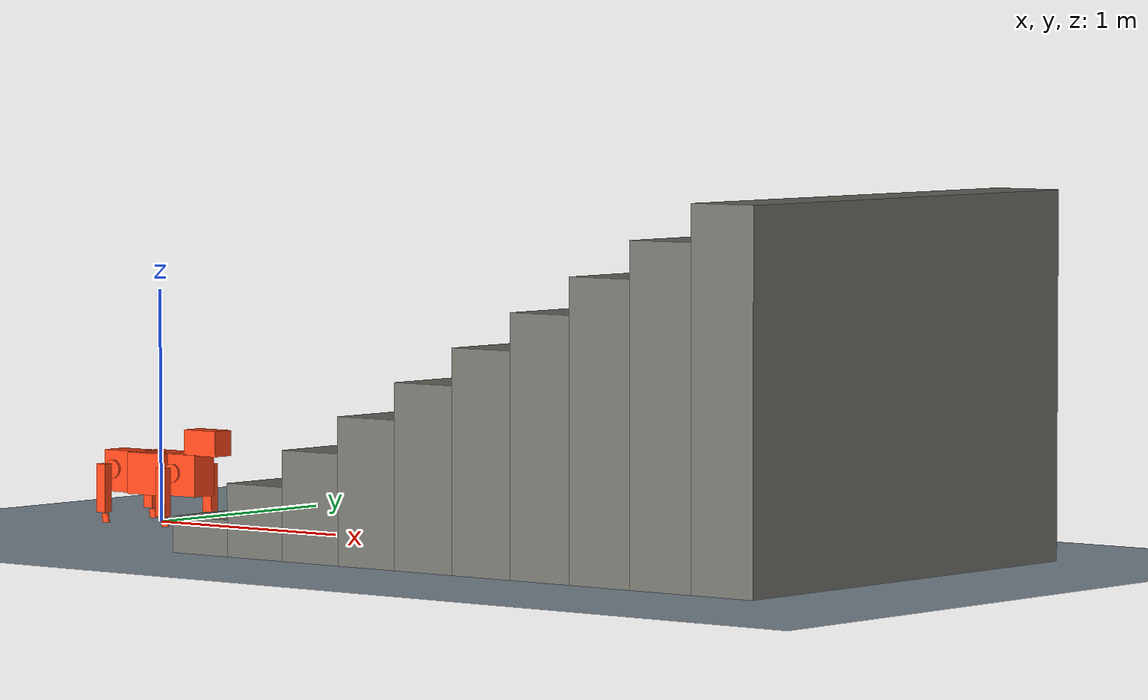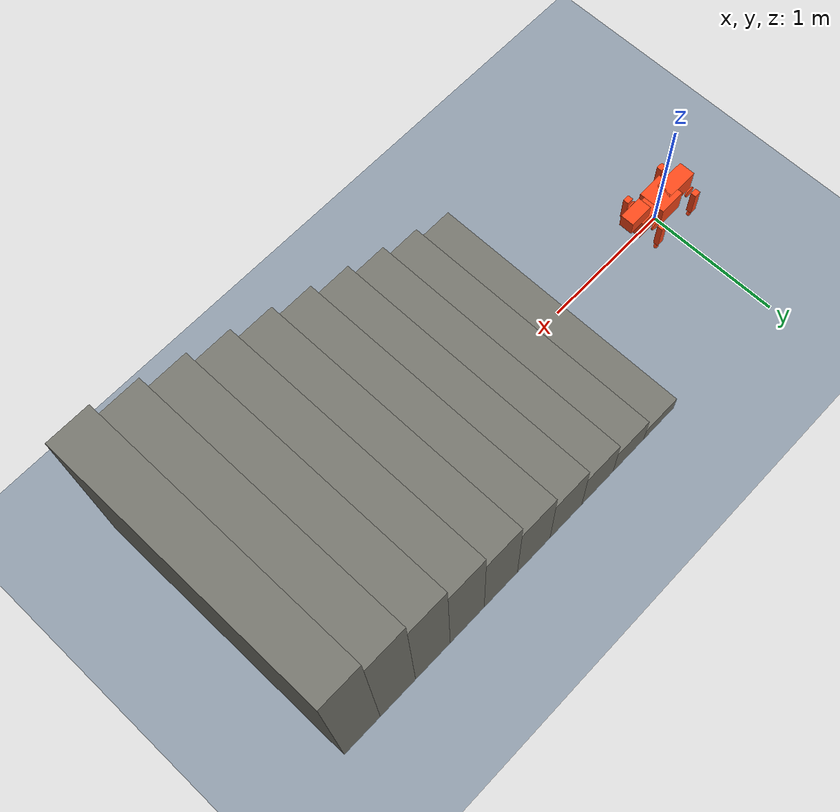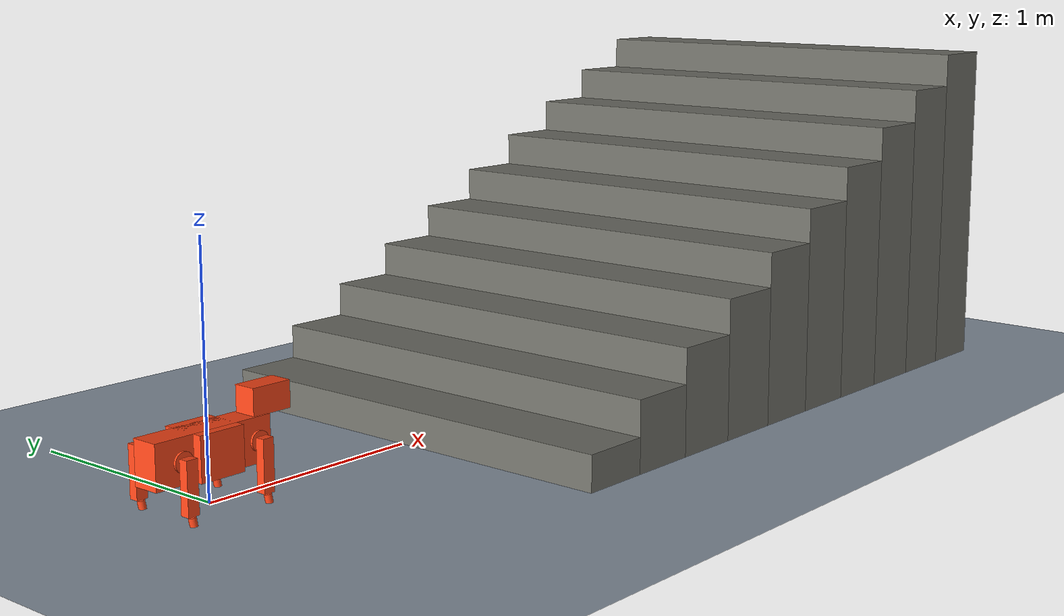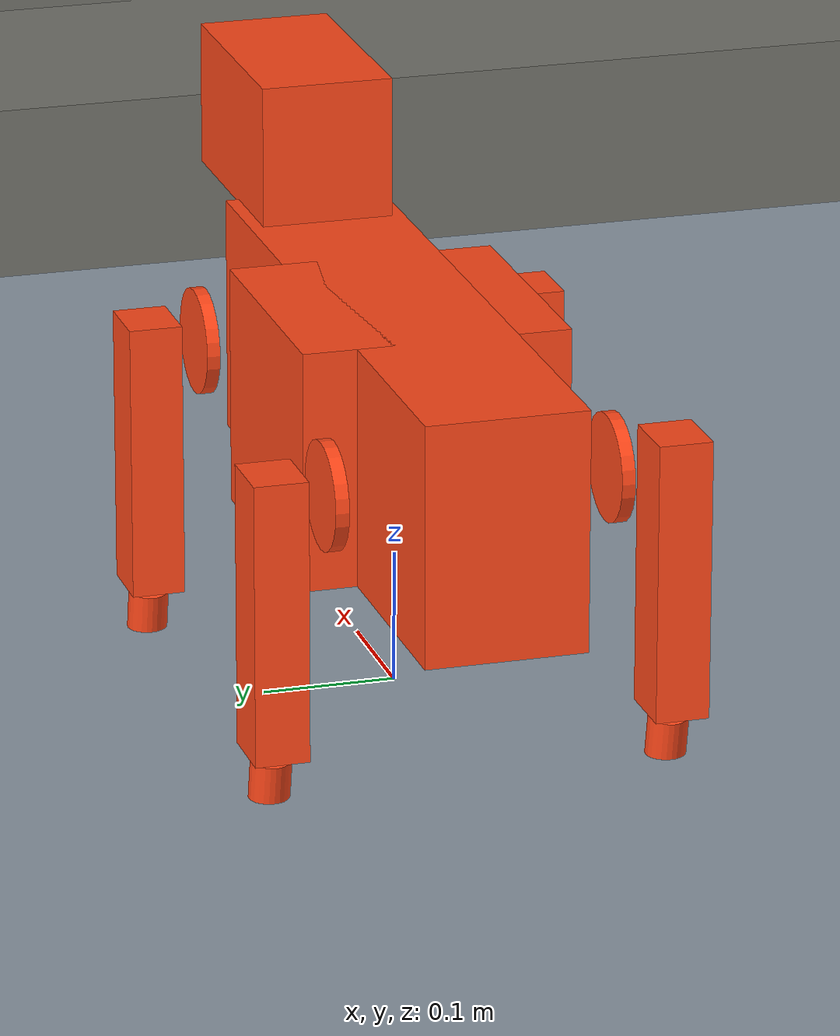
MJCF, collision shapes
<mujoco model="Argos_2_0114">
  <!-- 阅读顺序建议：default(参数模板) -> asset(资源) -> worldbody(刚体树) -> actuator(控制输入) -> contact(碰撞过滤) -> sensor(状态观测) -->
  <!-- default：定义可复用参数模板，后续 body/joint/geom 通过 class 继承 -->
  <default>
    <default class="robot">
      <!-- motor 模板：给关节与执行器提供统一默认属性 -->
      <default class="motor">
        <joint armature="0.01" />
        <motor />
      </default>
      <!-- visual 模板：可视化网格，默认不参与碰撞 -->
      <default class="visual">
        <geom material="visual_material" contype="0" conaffinity="0" group="2" />
      </default>
      <!-- collision 模板：碰撞几何的接触参数与摩擦参数 -->
      <default class="collision">
        <geom material="collision_material" condim="3" contype="0" conaffinity="1" priority="1" group="1" solref="0.005 1" solimp="0.99 0.999 1e-05" friction="1 0.01 0.01" />
      </default>
    </default>
  </default>
  <!-- compiler：MuJoCo 解析选项（角度单位、关节限制自动推断） -->
  <compiler angle="radian" />
  <compiler autolimits="true"/>
  <!-- asset：材质、纹理、网格资源库（仅定义资源，不直接产生物理行为） -->
  <asset>
    <!-- 修复1：给空名称材质赋予合法名称 visual_material，保留原 rgba -->
    <material name="visual_material" rgba="0.75294 0.75294 0.75294 1" />
    <material name="default_material" rgba="0.7 0.7 0.7 1" />
    <material name="collision_material" rgba="1.0 0.28 0.1 0.0" />
    <material name="stair_mat" rgba="0.45 0.45 0.42 1" />
    <!-- 修复2：补充 floor 引用的 checker_mat 材质定义 -->
    <texture type="2d" name="checker_tex" builtin="checker" rgb1="0.2 0.3 0.4" rgb2="0.9 0.9 0.9" width="500" height="500"/>
    <material name="checker_mat" texture="checker_tex" specular="1" shininess="1" texrepeat="15 15"/>
    <!-- 模型文件引用 -->
    <mesh name="FL_HIP.STL" file="meshes/FL_HIP.STL" />
    <mesh name="FL_THIGH.STL" file="meshes/FL_THIGH.STL" />
    <mesh name="FL_SHANK.STL" file="meshes/FL_SHANK.STL" />
    <mesh name="FL_FOOT.STL" file="meshes/FL_FOOT.STL" />
    <mesh name="FR_HIP.STL" file="meshes/FR_HIP.STL" />
    <mesh name="FR_THIGH.STL" file="meshes/FR_THIGH.STL" />
    <mesh name="FR_SHANK.STL" file="meshes/FR_SHANK.STL" />
    <mesh name="FR_FOOT.STL" file="meshes/FR_FOOT.STL" />
    <mesh name="HL_HIP.STL" file="meshes/HL_HIP.STL" />
    <mesh name="HL_THIGH.STL" file="meshes/HL_THIGH.STL" />
    <mesh name="HL_SHANK.STL" file="meshes/HL_SHANK.STL" />
    <mesh name="HL_FOOT.STL" file="meshes/HL_FOOT.STL" />
    <mesh name="HR_HIP.STL" file="meshes/HR_HIP.STL" />
    <mesh name="HR_THIGH.STL" file="meshes/HR_THIGH.STL" />
    <mesh name="HR_SHANK.STL" file="meshes/HR_SHANK.STL" />
    <mesh name="HR_FOOT.STL" file="meshes/HR_FOOT.STL" />
    <mesh name="HEAD.STL" file="meshes/HEAD.STL" />
  </asset>
  <!-- worldbody：场景与机器人刚体树，所有可参与仿真的 body/geom 都定义在此 -->
  <worldbody>
    <!-- 环境元素：地面和光源 -->
    <geom name="floor" type="plane" size="10 10 0.1" pos="0 0 0" material="checker_mat"/>
    <light directional="true" pos="-0.5 0.5 3" dir="0 0 -1"/>
    <!-- 10-step staircase in the robot forward direction (+X): rise 0.15m, tread 0.30m. -->
    <geom name="stair_01" type="box" size="0.15 1.0 0.075" pos="1.15 0 0.075" material="stair_mat" friction="1 0.01 0.01"/>
    <geom name="stair_02" type="box" size="0.15 1.0 0.150" pos="1.45 0 0.150" material="stair_mat" friction="1 0.01 0.01"/>
    <geom name="stair_03" type="box" size="0.15 1.0 0.225" pos="1.75 0 0.225" material="stair_mat" friction="1 0.01 0.01"/>
    <geom name="stair_04" type="box" size="0.15 1.0 0.300" pos="2.05 0 0.300" material="stair_mat" friction="1 0.01 0.01"/>
    <geom name="stair_05" type="box" size="0.15 1.0 0.375" pos="2.35 0 0.375" material="stair_mat" friction="1 0.01 0.01"/>
    <geom name="stair_06" type="box" size="0.15 1.0 0.450" pos="2.65 0 0.450" material="stair_mat" friction="1 0.01 0.01"/>
    <geom name="stair_07" type="box" size="0.15 1.0 0.525" pos="2.95 0 0.525" material="stair_mat" friction="1 0.01 0.01"/>
    <geom name="stair_08" type="box" size="0.15 1.0 0.600" pos="3.25 0 0.600" material="stair_mat" friction="1 0.01 0.01"/>
    <geom name="stair_09" type="box" size="0.15 1.0 0.675" pos="3.55 0 0.675" material="stair_mat" friction="1 0.01 0.01"/>
    <geom name="stair_10" type="box" size="0.15 1.0 0.750" pos="3.85 0 0.750" material="stair_mat" friction="1 0.01 0.01"/>
    <!-- base：机器人根节点（自由基座），四条腿从此处分支 -->
    <body name="base" pos="0.00000000 0.00000000 0.2" quat="1 0 0 0" childclass="robot">
      <freejoint name="floating_base" />
      <site name="imu_site" pos="0 0 0" size="0.005" rgba="1 0 0 1"/>
      <inertial pos="0 0 0" mass="6.240" diaginertia="0.02922043 0.12807702 0.12894751"/>
      <geom name="base_collision_0" pos="-0.015 0 0.01" quat="1.0 0.0 0.0 0.0" type="box" size="0.265 0.06 0.09" class="collision" />
      <geom name="base_collision_1" pos="-0.01 0 0.01" quat="1.0 0.0 0.0 0.0" type="box" size="0.1 0.1 0.09" class="collision" />
      <!-- 前左腿（FL）链路：HIP -> THIGH -> SHANK -> FOOT；其余三条腿使用相同层级结构 -->
      <body name="FL_HIP" pos="0.15893 0.054773 0.0227" quat="1.0 0.0 0.0 0.0">
        <joint name="FL_HipX_joint" type="hinge" ref="0.0" class="motor" range="-0.4886 0.4886" axis="1 0 0" />
        <site name="FL_HipX_joint_site" pos="0 0 0" quat="1 0 0 0" />
        <inertial pos="-0.00858663 -0.00606626 0.00210488" quat="1.0 0.0 0.0 0.0" mass="0.544" diaginertia="0.00035868 0.00044821 0.00039697" />
        <geom name="FL_HIP_collision" pos="0 0.05 0" quat="0.7071067835889063 0.7071067787841887 0.0 0.0" type="cylinder" size="0.04 0.005" class="collision" />
        <geom name="FL_HIP_visual" pos="0 0 0" quat="1.0 0.0 0.0 0.0" material="visual_material" type="mesh" mesh="FL_HIP.STL" class="visual" />
        <body name="FL_THIGH" pos="0 0.093356 0" quat="1.0 0.0 0.0 0.0">
          <joint name="FL_HipY_joint" type="hinge" ref="0.0" class="motor" range="-0.3525 2.789" axis="0 1 0" />
          <site name="FL_HipY_joint_site" pos="0 0 0" quat="1 0 0 0" />
          <inertial pos="-0.00437132 -0.03103389 -0.03485887" quat="1.0 0.0 0.0 0.0" mass="1.181" diaginertia="0.00509108 0.00508347 0.00111448" />
          <geom name="FL_THIGH_collision" pos="-0.012 0 -0.08" quat="1.0 0.0 0.0 0.0" type="box" size="0.025 0.02 0.105" class="collision" />
          <geom name="FL_THIGH_visual" pos="0 0 0" quat="1.0 0.0 0.0 0.0" material="visual_material" type="mesh" mesh="FL_THIGH.STL" class="visual" />
          <body name="FL_SHANK" pos="0 0 -0.2" quat="1.0 0.0 0.0 0.0">
            <joint name="FL_Knee_joint" type="hinge" ref="0.0" class="motor" range="-2.6929 -0.6335" axis="0 1 0" />
            <site name="FL_Knee_joint_site" pos="0 0 0" quat="1 0 0 0" />
            <inertial pos="0.00615557 0.00120286 -0.09474520" quat="1.0 0.0 0.0 0.0" mass="0.234" diaginertia="0.00162293 0.00164910 0.00005159" />
            <geom name="FL_SHANK_collision_0" pos="0.006 0 -0.05" quat="0.9950041652780258 0.0 -0.09983341664682815 0.0" type="cylinder" size="0.015 0.06" class="collision" />
            <geom name="FL_SHANK_collision_1" pos="0.018 0 -0.14" quat="1.0 0.0 0.0 0.0" type="cylinder" size="0.014 0.015" class="collision" />
            <geom name="FL_SHANK_collision_2" pos="0.008 0 -0.18" quat="0.9965420970718172 0.0 0.0830723227282831 0.0" type="cylinder" size="0.016 0.025" class="collision" />
            <geom name="FL_SHANK_visual" pos="0 0 0" quat="1.0 0.0 0.0 0.0" material="visual_material" type="mesh" mesh="FL_SHANK.STL" class="visual" />
            <body name="FL_FOOT" pos="0 0 -0.209999999999857" quat="1.0 0.0 0.0 0.0">
              <inertial pos="0 0 0" mass="0.02" diaginertia="0 0 0" />
              <geom name="FL_FOOT_collision" pos="0 0 -0.008" quat="1.0 0.0 0.0 0.0" type="sphere" size="0.022" class="collision" />
              <geom name="FL_FOOT_visual" pos="0 0 0" quat="1.0 0.0 0.0 0.0" material="visual_material" type="mesh" mesh="FL_FOOT.STL" class="visual" />
            </body>
          </body>
        </body>
      </body>
      <!-- 前右腿（FR）链路 -->
      <body name="FR_HIP" pos="0.15893 -0.054773 0.0227" quat="1.0 0.0 0.0 0.0">
        <joint name="FR_HipX_joint" type="hinge" ref="0.0" class="motor" range="-0.4886 0.4886" axis="1 0 0" />
        <site name="FR_HipX_joint_site" pos="0 0 0" quat="1 0 0 0" />
        <inertial pos="-0.00858663 0.00606626 0.00210488" quat="1.0 0.0 0.0 0.0" mass="0.544" diaginertia="0.00035868 0.00044821 0.00039697" />
        <geom name="FR_HIP_collision" pos="0 -0.05 0" quat="0.7071067835889063 0.7071067787841887 0.0 0.0" type="cylinder" size="0.04 0.005" class="collision" />
        <geom name="FR_HIP_visual" pos="0 0 0" quat="1.0 0.0 0.0 0.0" material="visual_material" type="mesh" mesh="FR_HIP.STL" class="visual" />
        <body name="FR_THIGH" pos="0 -0.093356 0" quat="1.0 0.0 0.0 0.0">
          <joint name="FR_HipY_joint" type="hinge" ref="0.0" class="motor" range="-0.3525 2.789" axis="0 1 0" />
          <site name="FR_HipY_joint_site" pos="0 0 0" quat="1 0 0 0" />
          <inertial pos="-0.00437132 0.03103389 -0.03485887" quat="1.0 0.0 0.0 0.0" mass="1.181" diaginertia="0.00509108 0.00508347 0.00111448" />
          <geom name="FR_THIGH_collision" pos="-0.012 0 -0.08" quat="1.0 0.0 0.0 0.0" type="box" size="0.025 0.02 0.105" class="collision" />
          <geom name="FR_THIGH_visual" pos="0 0 0" quat="1.0 0.0 0.0 0.0" material="visual_material" type="mesh" mesh="FR_THIGH.STL" class="visual" />
          <body name="FR_SHANK" pos="0 0 -0.2" quat="1.0 0.0 0.0 0.0">
            <joint name="FR_Knee_joint" type="hinge" ref="0.0" class="motor" range="-2.6929 -0.6335" axis="0 1 0" />
            <site name="FR_Knee_joint_site" pos="0 0 0" quat="1 0 0 0" />
            <inertial pos="0.00615557 -0.00120286 -0.09474520" quat="1.0 0.0 0.0 0.0" mass="0.234" diaginertia="0.00162293 0.00164910 0.00005159" />
            <geom name="FR_SHANK_collision_0" pos="0.006 0 -0.05" quat="0.9950041652780258 0.0 -0.09983341664682815 0.0" type="cylinder" size="0.015 0.06" class="collision" />
            <geom name="FR_SHANK_collision_1" pos="0.018 0 -0.14" quat="1.0 0.0 0.0 0.0" type="cylinder" size="0.014 0.015" class="collision" />
            <geom name="FR_SHANK_collision_2" pos="0.008 0 -0.18" quat="0.9965420970718172 0.0 0.0830723227282831 0.0" type="cylinder" size="0.016 0.025" class="collision" />
            <geom name="FR_SHANK_visual" pos="0 0 0" quat="1.0 0.0 0.0 0.0" material="visual_material" type="mesh" mesh="FR_SHANK.STL" class="visual" />
            <body name="FR_FOOT" pos="0 0 -0.209999999999857" quat="1.0 0.0 0.0 0.0">
              <inertial pos="0 0 0" mass="0.02" diaginertia="0 0 0" />
              <geom name="FR_FOOT_collision" pos="0 0 -0.008" quat="1.0 0.0 0.0 0.0" type="sphere" size="0.022" class="collision" />
              <geom name="FR_FOOT_visual" pos="0 0 0" quat="1.0 0.0 0.0 0.0" material="visual_material" type="mesh" mesh="FR_FOOT.STL" class="visual" />
            </body>
          </body>
        </body>
      </body>
      <!-- 后左腿（HL）链路 -->
      <body name="HL_HIP" pos="-0.18987 0.054773 0.0227" quat="1.0 0.0 0.0 0.0">
        <joint name="HL_HipX_joint" type="hinge" ref="0.0" class="motor" range="-0.4886 0.4886" axis="1 0 0" />
        <site name="HL_HipX_joint_site" pos="0 0 0" quat="1 0 0 0" />
        <inertial pos="0.00858663 -0.00606626 0.00210488" quat="1.0 0.0 0.0 0.0" mass="0.544" diaginertia="0.00035868 0.00044821 0.00039697" />
        <geom name="HL_HIP_collision" pos="0 0.05 0" quat="0.7071067835889063 0.7071067787841887 0.0 0.0" type="cylinder" size="0.04 0.005" class="collision" />
        <geom name="HL_HIP_visual" pos="0 0 0" quat="1.0 0.0 0.0 0.0" material="visual_material" type="mesh" mesh="HL_HIP.STL" class="visual" />
        <body name="HL_THIGH" pos="0 0.093356 0" quat="1.0 0.0 0.0 0.0">
          <joint name="HL_HipY_joint" type="hinge" ref="0.0" class="motor" range="-0.3525 2.789" axis="0 1 0" />
          <site name="HL_HipY_joint_site" pos="0 0 0" quat="1 0 0 0" />
          <inertial pos="-0.00437132 -0.03103389 -0.03485887" quat="1.0 0.0 0.0 0.0" mass="1.181" diaginertia="0.00509108 0.00508347 0.00111448" />
          <geom name="HL_THIGH_collision" pos="-0.012 0 -0.08" quat="1.0 0.0 0.0 0.0" type="box" size="0.025 0.02 0.105" class="collision" />
          <geom name="HL_THIGH_visual" pos="0 0 0" quat="1.0 0.0 0.0 0.0" material="visual_material" type="mesh" mesh="HL_THIGH.STL" class="visual" />
          <body name="HL_SHANK" pos="0 0 -0.2" quat="1.0 0.0 0.0 0.0">
            <joint name="HL_Knee_joint" type="hinge" ref="0.0" class="motor" range="-2.6929 -0.6335" axis="0 1 0" />
            <site name="HL_Knee_joint_site" pos="0 0 0" quat="1 0 0 0" />
            <inertial pos="0.00615557 0.00120286 -0.09474520" quat="1.0 0.0 0.0 0.0" mass="0.234" diaginertia="0.00162293 0.00164910 0.00005159" />
            <geom name="HL_SHANK_collision_0" pos="0.006 0 -0.05" quat="0.9950041652780258 0.0 -0.09983341664682815 0.0" type="cylinder" size="0.015 0.06" class="collision" />
            <geom name="HL_SHANK_collision_1" pos="0.018 0 -0.14" quat="1.0 0.0 0.0 0.0" type="cylinder" size="0.014 0.015" class="collision" />
            <geom name="HL_SHANK_collision_2" pos="0.008 0 -0.18" quat="0.9965420970718172 0.0 0.0830723227282831 0.0" type="cylinder" size="0.016 0.025" class="collision" />
            <geom name="HL_SHANK_visual" pos="0 0 0" quat="1.0 0.0 0.0 0.0" material="visual_material" type="mesh" mesh="HL_SHANK.STL" class="visual" />
            <body name="HL_FOOT" pos="0 0 -0.209999999999857" quat="1.0 0.0 0.0 0.0">
              <inertial pos="0 0 0" mass="0.02" diaginertia="0 0 0" />
              <geom name="HL_FOOT_collision" pos="0 0 -0.008" quat="1.0 0.0 0.0 0.0" type="sphere" size="0.022" class="collision" />
              <geom name="HL_FOOT_visual" pos="0 0 0" quat="1.0 0.0 0.0 0.0" material="visual_material" type="mesh" mesh="HL_FOOT.STL" class="visual" />
            </body>
          </body>
        </body>
      </body>
      <!-- 后右腿（HR）链路 -->
      <body name="HR_HIP" pos="-0.18987 -0.054773 0.0227" quat="1.0 0.0 0.0 0.0">
        <joint name="HR_HipX_joint" type="hinge" ref="0.0" class="motor" range="-0.4886 0.4886" axis="1 0 0" />
        <site name="HR_HipX_joint_site" pos="0 0 0" quat="1 0 0 0" />
        <inertial pos="0.00858663 0.00606626 0.00210488" quat="1.0 0.0 0.0 0.0" mass="0.544" diaginertia="0.00035868 0.00044821 0.00039697" />
        <geom name="HR_HIP_collision" pos="0 -0.05 0" quat="0.7071067835889063 0.7071067787841887 0.0 0.0" type="cylinder" size="0.04 0.005" class="collision" />
        <geom name="HR_HIP_visual" pos="0 0 0" quat="1.0 0.0 0.0 0.0" material="visual_material" type="mesh" mesh="HR_HIP.STL" class="visual" />
        <body name="HR_THIGH" pos="0 -0.093356 0" quat="1.0 0.0 0.0 0.0">
          <joint name="HR_HipY_joint" type="hinge" ref="0.0" class="motor" range="-0.3525 2.789" axis="0 1 0" />
          <site name="HR_HipY_joint_site" pos="0 0 0" quat="1 0 0 0" />
          <inertial pos="-0.00437132 0.03103389 -0.03485887" quat="1.0 0.0 0.0 0.0" mass="1.181" diaginertia="0.00509108 0.00508347 0.00111448" />
          <geom name="HR_THIGH_collision" pos="-0.012 0 -0.08" quat="1.0 0.0 0.0 0.0" type="box" size="0.025 0.02 0.105" class="collision" />
          <geom name="HR_THIGH_visual" pos="0 0 0" quat="1.0 0.0 0.0 0.0" material="visual_material" type="mesh" mesh="HR_THIGH.STL" class="visual" />
          <body name="HR_SHANK" pos="0 0 -0.2" quat="1.0 0.0 0.0 0.0">
            <joint name="HR_Knee_joint" type="hinge" ref="0.0" class="motor" range="-2.6929 -0.6335" axis="0 1 0" />
            <site name="HR_Knee_joint_site" pos="0 0 0" quat="1 0 0 0" />
            <inertial pos="0.00615557 -0.00120286 -0.09474520" quat="1.0 0.0 0.0 0.0" mass="0.234" diaginertia="0.00162293 0.00164910 0.00005159" />
            <geom name="HR_SHANK_collision_0" pos="0.006 0 -0.05" quat="0.9950041652780258 0.0 -0.09983341664682815 0.0" type="cylinder" size="0.015 0.06" class="collision" />
            <geom name="HR_SHANK_collision_1" pos="0.018 0 -0.14" quat="1.0 0.0 0.0 0.0" type="cylinder" size="0.014 0.015" class="collision" />
            <geom name="HR_SHANK_collision_2" pos="0.008 0 -0.18" quat="0.9965420970718172 0.0 0.0830723227282831 0.0" type="cylinder" size="0.016 0.025" class="collision" />
            <geom name="HR_SHANK_visual" pos="0 0 0" quat="1.0 0.0 0.0 0.0" material="visual_material" type="mesh" mesh="HR_SHANK.STL" class="visual" />
            <body name="HR_FOOT" pos="0 0 -0.209999999999857" quat="1.0 0.0 0.0 0.0">
              <inertial pos="0 0 0" mass="0.02" diaginertia="0 0 0" />
              <geom name="HR_FOOT_collision" pos="0 0 -0.008" quat="1.0 0.0 0.0 0.0" type="sphere" size="0.022" class="collision" />
              <geom name="HR_FOOT_visual" pos="0 0 0" quat="1.0 0.0 0.0 0.0" material="visual_material" type="mesh" mesh="HR_FOOT.STL" class="visual" />
            </body>
          </body>
        </body>
      </body>
      <!-- 头部 -->
      <body name="HEAD" pos="0.21949 -0.00025653 0.12248" quat="1.0 0.0 0.0 0.0" childclass="robot">
        <inertial pos="0.02429563 -0.00102927 0.04350887" quat="1.0 0.0 0.0 0.0" mass="0.33600000" diaginertia="0.00055557 0.00078690 0.00071445" />
        <geom name="HEAD_collision" pos="0.05 0 0.03" quat="1.0 0.0 0.0 0.0" type="box" size="0.09 0.05 0.055" class="collision" />
        <geom name="HEAD_visual" pos="0 0 0" quat="1.0 0.0 0.0 0.0" material="visual_material" type="mesh" mesh="HEAD.STL" class="visual" />
      </body>
      <!-- site/camera：用于观测与可视化跟踪，不直接施加驱动力 -->
      <site name="base_site" pos="0 0 0" quat="1 0 0 0" />
      <camera name="front_camera" mode="track" fovy="90.0" quat="4.329780281177467e-17 4.329780281177466e-17 0.7071067811865475 0.7071067811865476" pos="0.0 2.0 0.5" />
      <camera name="side_camera" mode="track" fovy="90.0" quat="-0.5 -0.4999999999999999 0.5 0.5000000000000001" pos="-2.0 0.0 0.5" />
    </body>
  </worldbody>
  <!-- actuator：控制输入接口，将 ctrl 信号映射到每个关节电机 -->
  <actuator>
    <motor name="FL_HipX_joint_ctrl" joint="FL_HipX_joint" class="motor" gear="1" ctrlrange="-21 21"/>
    <motor name="FL_HipY_joint_ctrl" joint="FL_HipY_joint" class="motor" gear="1" ctrlrange="-21 21"/>
    <motor name="FL_Knee_joint_ctrl" joint="FL_Knee_joint" class="motor" gear="1" ctrlrange="-32 32"/>
    <motor name="FR_HipX_joint_ctrl" joint="FR_HipX_joint" class="motor" gear="1" ctrlrange="-21 21"/>
    <motor name="FR_HipY_joint_ctrl" joint="FR_HipY_joint" class="motor" gear="1" ctrlrange="-21 21"/>
    <motor name="FR_Knee_joint_ctrl" joint="FR_Knee_joint" class="motor" gear="1" ctrlrange="-32 32"/>
    <motor name="HL_HipX_joint_ctrl" joint="HL_HipX_joint" class="motor" gear="1" ctrlrange="-21 21"/>
    <motor name="HL_HipY_joint_ctrl" joint="HL_HipY_joint" class="motor" gear="1" ctrlrange="-21 21"/>
    <motor name="HL_Knee_joint_ctrl" joint="HL_Knee_joint" class="motor" gear="1" ctrlrange="-32 32"/>
    <motor name="HR_HipX_joint_ctrl" joint="HR_HipX_joint" class="motor" gear="1" ctrlrange="-21 21"/>
    <motor name="HR_HipY_joint_ctrl" joint="HR_HipY_joint" class="motor" gear="1" ctrlrange="-21 21"/>
    <motor name="HR_Knee_joint_ctrl" joint="HR_Knee_joint" class="motor" gear="1" ctrlrange="-32 32"/>
  </actuator>
  <!-- contact：碰撞排除表，避免父子或相邻连杆发生不必要自碰撞 -->
  <contact>
    <exclude body1="base" body2="FL_HIP" />
    <exclude body1="FL_HIP" body2="FL_THIGH" />
    <exclude body1="FL_THIGH" body2="FL_SHANK" />
    <exclude body1="FL_SHANK" body2="FL_FOOT" />
    <exclude body1="base" body2="FR_HIP" />
    <exclude body1="FR_HIP" body2="FR_THIGH" />
    <exclude body1="FR_THIGH" body2="FR_SHANK" />
    <exclude body1="FR_SHANK" body2="FR_FOOT" />
    <exclude body1="base" body2="HL_HIP" />
    <exclude body1="HL_HIP" body2="HL_THIGH" />
    <exclude body1="HL_THIGH" body2="HL_SHANK" />
    <exclude body1="HL_SHANK" body2="HL_FOOT" />
    <exclude body1="base" body2="HR_HIP" />
    <exclude body1="HR_HIP" body2="HR_THIGH" />
    <exclude body1="HR_THIGH" body2="HR_SHANK" />
    <exclude body1="HR_SHANK" body2="HR_FOOT" />
  </contact>
  <!-- sensor：观测输出定义，供状态估计和控制策略读取 -->
  <sensor>
    <!-- 关节 site 的位姿与速度观测（这里示例保留 FL_HipX_joint_site） -->
    <framepos name="FL_HipX_joint_site_pos" objtype="site" objname="FL_HipX_joint_site" />
    <framequat name="FL_HipX_joint_site_quat" objtype="site" objname="FL_HipX_joint_site" />
    <framelinvel name="FL_HipX_joint_site_linvel" objtype="site" objname="FL_HipX_joint_site" />
    <frameangvel name="FL_HipX_joint_site_angvel" objtype="site" objname="FL_HipX_joint_site" />
    <velocimeter name="FL_HipX_joint_site_vel" site="FL_HipX_joint_site" />
    <!-- 优化：给传感器补充 name 属性，符合 MuJoCo 规范 -->
    <accelerometer name="imu_acc" site="imu_site"/>
    <gyro name="imu_gyro" site="imu_site"/>
  </sensor>
</mujoco>
